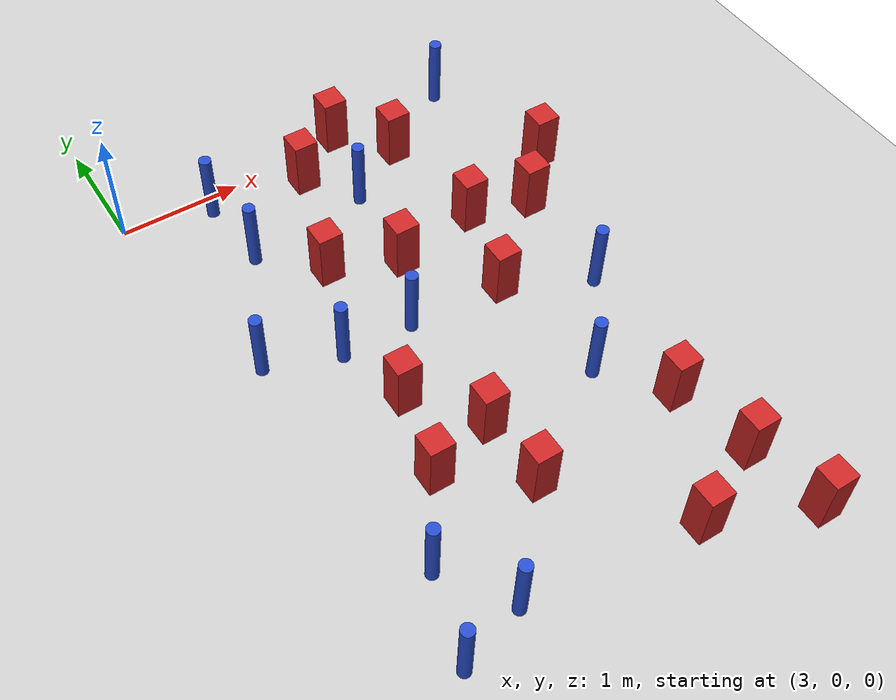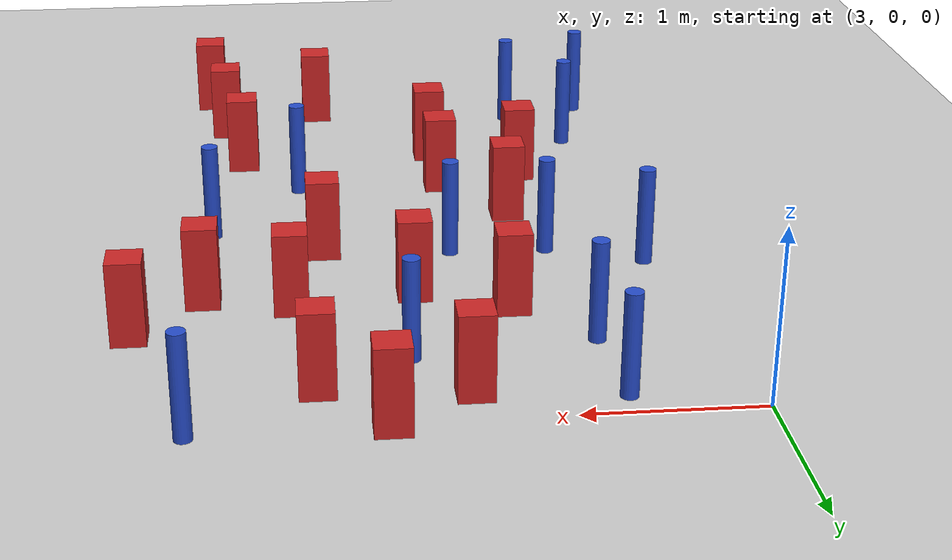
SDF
<sdf version="1.6">
 <world name="default">
  <model name="ground_plane">
   <static>1</static>
   <link name="link">
    <collision name="collision">
     <geometry><plane><normal>0 0 1</normal><size>100 100</size></plane></geometry>
     <surface><friction><ode><mu>100</mu><mu2>50</mu2></ode></friction></surface>
    </collision>
    <visual name="visual">
     <cast_shadows>0</cast_shadows>
     <geometry><plane><normal>0 0 1</normal><size>100 100</size></plane></geometry>
     <material>
      <ambient>1.0 1.0 1.0 1.0</ambient>
      <diffuse>0.8 0.8 0.8 1.0</diffuse>
      <specular>0.01 0.01 0.01 1.000000</specular>
     </material>
    </visual>
   </link>
  </model>
  <model name="pole_obstacle2">
   <static>true</static>
   <pose>5.98450393282 0.0520118325981 2.88873142074e-08 -9.90536689361e-09 4.60219949001e-07 -1.20965994955e-07</pose>
   <link name="link">
    <pose>0 0 0.3 0 -0 0</pose>
    <inertial>
     <mass>1</mass>
     <inertia><ixx>0.145833</ixx><ixy>0</ixy><ixz>0</ixz><iyy>0.145833</iyy><iyz>0</iyz><izz>0.125</izz></inertia>
    </inertial>
    <collision name="collision">
     <geometry><cylinder><radius>0.05</radius><length>.6</length></cylinder></geometry>
    </collision>
    <visual name="visual">
     <geometry><cylinder><radius>0.05</radius><length>.6</length></cylinder></geometry>
     <material>
      <script><name>Gazebo/Blue</name><uri>file://media/materials/scripts/gazebo.material</uri></script>
     </material>
    </visual>
   </link>
  </model>
  <model name="square_post_obstacle13">
   <static>true</static>
   <pose>5.93335077788 -1.4574501915 8.22691968438e-08 7.2212513382e-06 -7.54495500217e-07 2.29674213826e-05</pose>
   <link name="link">
    <pose>0 0 0.25 0 -0 0</pose>
    <inertial>
     <mass>100</mass>
     <inertia>
      <ixx>0.166667</ixx>
      <ixy>0</ixy>
      <ixz>0</ixz>
      <iyy>0.166667</iyy>
      <iyz>0</iyz>
      <izz>0.166667</izz>
     </inertia>
    </inertial>
    <collision name="collision"><geometry><box><size>.2 .2 .5</size></box></geometry></collision>
    <visual name="visual">
     <geometry><box><size>.2 .2 .5</size></box></geometry>
     <material>
      <script><name>Gazebo/Red</name><uri>file://media/materials/scripts/gazebo.material</uri></script>
     </material>
    </visual>
   </link>
  </model>
  <model name="square_post_obstacle28">
   <static>true</static>
   <pose>4.45111842854 -3.65477685041 8.22691968438e-08 7.2212513382e-06 -7.54495500217e-07 2.29674213826e-05</pose>
   <link name="link">
    <pose>0 0 0.25 0 -0 0</pose>
    <inertial>
     <mass>100</mass>
     <inertia>
      <ixx>0.166667</ixx>
      <ixy>0</ixy>
      <ixz>0</ixz>
      <iyy>0.166667</iyy>
      <iyz>0</iyz>
      <izz>0.166667</izz>
     </inertia>
    </inertial>
    <collision name="collision"><geometry><box><size>.2 .2 .5</size></box></geometry></collision>
    <visual name="visual">
     <geometry><box><size>.2 .2 .5</size></box></geometry>
     <material>
      <script><name>Gazebo/Red</name><uri>file://media/materials/scripts/gazebo.material</uri></script>
     </material>
    </visual>
   </link>
  </model>
  <model name="square_post_obstacle36">
   <static>true</static>
   <pose>6.32272839753 -1.04574170397 8.22691968438e-08 7.2212513382e-06 -7.54495500217e-07 2.29674213826e-05</pose>
   <link name="link">
    <pose>0 0 0.25 0 -0 0</pose>
    <inertial>
     <mass>100</mass>
     <inertia>
      <ixx>0.166667</ixx>
      <ixy>0</ixy>
      <ixz>0</ixz>
      <iyy>0.166667</iyy>
      <iyz>0</iyz>
      <izz>0.166667</izz>
     </inertia>
    </inertial>
    <collision name="collision"><geometry><box><size>.2 .2 .5</size></box></geometry></collision>
    <visual name="visual">
     <geometry><box><size>.2 .2 .5</size></box></geometry>
     <material>
      <script><name>Gazebo/Red</name><uri>file://media/materials/scripts/gazebo.material</uri></script>
     </material>
    </visual>
   </link>
  </model>
  <model name="square_post_obstacle39">
   <static>true</static>
   <pose>5.97103102984 -4.82717464047 8.22691968438e-08 7.2212513382e-06 -7.54495500217e-07 2.29674213826e-05</pose>
   <link name="link">
    <pose>0 0 0.25 0 -0 0</pose>
    <inertial>
     <mass>100</mass>
     <inertia>
      <ixx>0.166667</ixx>
      <ixy>0</ixy>
      <ixz>0</ixz>
      <iyy>0.166667</iyy>
      <iyz>0</iyz>
      <izz>0.166667</izz>
     </inertia>
    </inertial>
    <collision name="collision"><geometry><box><size>.2 .2 .5</size></box></geometry></collision>
    <visual name="visual">
     <geometry><box><size>.2 .2 .5</size></box></geometry>
     <material>
      <script><name>Gazebo/Red</name><uri>file://media/materials/scripts/gazebo.material</uri></script>
     </material>
    </visual>
   </link>
  </model>
  <model name="pole_obstacle40">
   <static>true</static>
   <pose>3.48325071317 -3.83719555278 2.88873142074e-08 -9.90536690232e-09 4.6021994898e-07 -1.20965994968e-07</pose>
   <link name="link">
    <pose>0 0 0.3 0 -0 0</pose>
    <inertial>
     <mass>1</mass>
     <inertia><ixx>0.145833</ixx><ixy>0</ixy><ixz>0</ixz><iyy>0.145833</iyy><iyz>0</iyz><izz>0.125</izz></inertia>
    </inertial>
    <collision name="collision">
     <geometry><cylinder><radius>0.05</radius><length>.6</length></cylinder></geometry>
    </collision>
    <visual name="visual">
     <geometry><cylinder><radius>0.05</radius><length>.6</length></cylinder></geometry>
     <material>
      <script><name>Gazebo/Blue</name><uri>file://media/materials/scripts/gazebo.material</uri></script>
     </material>
    </visual>
   </link>
  </model>
  <model name="pole_obstacle53">
   <static>true</static>
   <pose>3.29543677055 -4.50667835025 2.88873142074e-08 -9.90536689859e-09 4.60219948989e-07 -1.20965994961e-07</pose>
   <link name="link">
    <pose>0 0 0.3 0 -0 0</pose>
    <inertial>
     <mass>1</mass>
     <inertia><ixx>0.145833</ixx><ixy>0</ixy><ixz>0</ixz><iyy>0.145833</iyy><iyz>0</iyz><izz>0.125</izz></inertia>
    </inertial>
    <collision name="collision">
     <geometry><cylinder><radius>0.05</radius><length>.6</length></cylinder></geometry>
    </collision>
    <visual name="visual">
     <geometry><cylinder><radius>0.05</radius><length>.6</length></cylinder></geometry>
     <material>
      <script><name>Gazebo/Blue</name><uri>file://media/materials/scripts/gazebo.material</uri></script>
     </material>
    </visual>
   </link>
  </model>
  <model name="square_post_obstacle70">
   <static>true</static>
   <pose>4.42544886467 -3.08571415982 8.22691968438e-08 7.2212513382e-06 -7.54495500217e-07 2.29674213826e-05</pose>
   <link name="link">
    <pose>0 0 0.25 0 -0 0</pose>
    <inertial>
     <mass>100</mass>
     <inertia>
      <ixx>0.166667</ixx>
      <ixy>0</ixy>
      <ixz>0</ixz>
      <iyy>0.166667</iyy>
      <iyz>0</iyz>
      <izz>0.166667</izz>
     </inertia>
    </inertial>
    <collision name="collision"><geometry><box><size>.2 .2 .5</size></box></geometry></collision>
    <visual name="visual">
     <geometry><box><size>.2 .2 .5</size></box></geometry>
     <material>
      <script><name>Gazebo/Red</name><uri>file://media/materials/scripts/gazebo.material</uri></script>
     </material>
    </visual>
   </link>
  </model>
  <model name="square_post_obstacle75">
   <static>true</static>
   <pose>5.20653766354 -4.50158408308 8.22691968438e-08 7.22125133819e-06 -7.54495500217e-07 2.29674213826e-05</pose>
   <link name="link">
    <pose>0 0 0.25 0 -0 0</pose>
    <inertial>
     <mass>100</mass>
     <inertia>
      <ixx>0.166667</ixx>
      <ixy>0</ixy>
      <ixz>0</ixz>
      <iyy>0.166667</iyy>
      <iyz>0</iyz>
      <izz>0.166667</izz>
     </inertia>
    </inertial>
    <collision name="collision"><geometry><box><size>.2 .2 .5</size></box></geometry></collision>
    <visual name="visual">
     <geometry><box><size>.2 .2 .5</size></box></geometry>
     <material>
      <script><name>Gazebo/Red</name><uri>file://media/materials/scripts/gazebo.material</uri></script>
     </material>
    </visual>
   </link>
  </model>
  <model name="pole_obstacle81">
   <static>true</static>
   <pose>3.87712751434 -2.00368837345 2.88873142074e-08 -9.9053668955e-09 4.60219948996e-07 -1.20965994957e-07</pose>
   <link name="link">
    <pose>0 0 0.3 0 -0 0</pose>
    <inertial>
     <mass>1</mass>
     <inertia><ixx>0.145833</ixx><ixy>0</ixy><ixz>0</ixz><iyy>0.145833</iyy><iyz>0</iyz><izz>0.125</izz></inertia>
    </inertial>
    <collision name="collision">
     <geometry><cylinder><radius>0.05</radius><length>.6</length></cylinder></geometry>
    </collision>
    <visual name="visual">
     <geometry><cylinder><radius>0.05</radius><length>.6</length></cylinder></geometry>
     <material>
      <script><name>Gazebo/Blue</name><uri>file://media/materials/scripts/gazebo.material</uri></script>
     </material>
    </visual>
   </link>
  </model>
  <model name="pole_obstacle84">
   <static>true</static>
   <pose>3.7648357998 -0.805726937626 2.88873142074e-08 -9.90536689285e-09 4.60219949002e-07 -1.20965994953e-07</pose>
   <link name="link">
    <pose>0 0 0.3 0 -0 0</pose>
    <inertial>
     <mass>1</mass>
     <inertia><ixx>0.145833</ixx><ixy>0</ixy><ixz>0</ixz><iyy>0.145833</iyy><iyz>0</iyz><izz>0.125</izz></inertia>
    </inertial>
    <collision name="collision">
     <geometry><cylinder><radius>0.05</radius><length>.6</length></cylinder></geometry>
    </collision>
    <visual name="visual">
     <geometry><cylinder><radius>0.05</radius><length>.6</length></cylinder></geometry>
     <material>
      <script><name>Gazebo/Blue</name><uri>file://media/materials/scripts/gazebo.material</uri></script>
     </material>
    </visual>
   </link>
  </model>
  <model name="pole_obstacle87">
   <static>true</static>
   <pose>3.30753627075 -1.78974262358 2.88873142074e-08 -9.90536689395e-09 4.60219949e-07 -1.20965994953e-07</pose>
   <link name="link">
    <pose>0 0 0.3 0 -0 0</pose>
    <inertial>
     <mass>1</mass>
     <inertia><ixx>0.145833</ixx><ixy>0</ixy><ixz>0</ixz><iyy>0.145833</iyy><iyz>0</iyz><izz>0.125</izz></inertia>
    </inertial>
    <collision name="collision">
     <geometry><cylinder><radius>0.05</radius><length>.6</length></cylinder></geometry>
    </collision>
    <visual name="visual">
     <geometry><cylinder><radius>0.05</radius><length>.6</length></cylinder></geometry>
     <material>
      <script><name>Gazebo/Blue</name><uri>file://media/materials/scripts/gazebo.material</uri></script>
     </material>
    </visual>
   </link>
  </model>
  <model name="square_post_obstacle81">
   <static>true</static>
   <pose>5.84723898401 -4.21907924971 8.22691968438e-08 7.2212513382e-06 -7.54495500217e-07 2.29674213826e-05</pose>
   <link name="link">
    <pose>0 0 0.25 0 -0 0</pose>
    <inertial>
     <mass>100</mass>
     <inertia>
      <ixx>0.166667</ixx>
      <ixy>0</ixy>
      <ixz>0</ixz>
      <iyy>0.166667</iyy>
      <iyz>0</iyz>
      <izz>0.166667</izz>
     </inertia>
    </inertial>
    <collision name="collision"><geometry><box><size>.2 .2 .5</size></box></geometry></collision>
    <visual name="visual">
     <geometry><box><size>.2 .2 .5</size></box></geometry>
     <material>
      <script><name>Gazebo/Red</name><uri>file://media/materials/scripts/gazebo.material</uri></script>
     </material>
    </visual>
   </link>
  </model>
  <model name="square_post_obstacle93">
   <static>true</static>
   <pose>5.22646437338 -2.0768197818 8.22691968438e-08 7.2212513382e-06 -7.54495500217e-07 2.29674213826e-05</pose>
   <link name="link">
    <pose>0 0 0.25 0 -0 0</pose>
    <inertial>
     <mass>100</mass>
     <inertia>
      <ixx>0.166667</ixx>
      <ixy>0</ixy>
      <ixz>0</ixz>
      <iyy>0.166667</iyy>
      <iyz>0</iyz>
      <izz>0.166667</izz>
     </inertia>
    </inertial>
    <collision name="collision"><geometry><box><size>.2 .2 .5</size></box></geometry></collision>
    <visual name="visual">
     <geometry><box><size>.2 .2 .5</size></box></geometry>
     <material>
      <script><name>Gazebo/Red</name><uri>file://media/materials/scripts/gazebo.material</uri></script>
     </material>
    </visual>
   </link>
  </model>
  <model name="pole_obstacle136">
   <static>true</static>
   <pose>4.45875215781 -2.02023950317 2.88873142074e-08 -9.90536689749e-09 4.60219948991e-07 -1.20965994959e-07</pose>
   <link name="link">
    <pose>0 0 0.3 0 -0 0</pose>
    <inertial>
     <mass>1</mass>
     <inertia><ixx>0.145833</ixx><ixy>0</ixy><ixz>0</ixz><iyy>0.145833</iyy><iyz>0</iyz><izz>0.125</izz></inertia>
    </inertial>
    <collision name="collision">
     <geometry><cylinder><radius>0.05</radius><length>.6</length></cylinder></geometry>
    </collision>
    <visual name="visual">
     <geometry><cylinder><radius>0.05</radius><length>.6</length></cylinder></geometry>
     <material>
      <script><name>Gazebo/Blue</name><uri>file://media/materials/scripts/gazebo.material</uri></script>
     </material>
    </visual>
   </link>
  </model>
  <model name="square_post_obstacle118">
   <static>true</static>
   <pose>4.72104698933 -1.45118410334 8.22691968438e-08 7.2212513382e-06 -7.54495500217e-07 2.29674213826e-05</pose>
   <link name="link">
    <pose>0 0 0.25 0 -0 0</pose>
    <inertial>
     <mass>100</mass>
     <inertia>
      <ixx>0.166667</ixx>
      <ixy>0</ixy>
      <ixz>0</ixz>
      <iyy>0.166667</iyy>
      <iyz>0</iyz>
      <izz>0.166667</izz>
     </inertia>
    </inertial>
    <collision name="collision"><geometry><box><size>.2 .2 .5</size></box></geometry></collision>
    <visual name="visual">
     <geometry><box><size>.2 .2 .5</size></box></geometry>
     <material>
      <script><name>Gazebo/Red</name><uri>file://media/materials/scripts/gazebo.material</uri></script>
     </material>
    </visual>
   </link>
  </model>
  <model name="square_post_obstacle121">
   <static>true</static>
   <pose>5.30965069357 -0.360755727647 8.22691968438e-08 7.2212513382e-06 -7.54495500217e-07 2.29674213826e-05</pose>
   <link name="link">
    <pose>0 0 0.25 0 -0 0</pose>
    <inertial>
     <mass>100</mass>
     <inertia>
      <ixx>0.166667</ixx>
      <ixy>0</ixy>
      <ixz>0</ixz>
      <iyy>0.166667</iyy>
      <iyz>0</iyz>
      <izz>0.166667</izz>
     </inertia>
    </inertial>
    <collision name="collision"><geometry><box><size>.2 .2 .5</size></box></geometry></collision>
    <visual name="visual">
     <geometry><box><size>.2 .2 .5</size></box></geometry>
     <material>
      <script><name>Gazebo/Red</name><uri>file://media/materials/scripts/gazebo.material</uri></script>
     </material>
    </visual>
   </link>
  </model>
  <model name="square_post_obstacle151">
   <static>true</static>
   <pose>5.72315373338 -3.56571907378 8.22691968438e-08 7.2212513382e-06 -7.54495500217e-07 2.29674213826e-05</pose>
   <link name="link">
    <pose>0 0 0.25 0 -0 0</pose>
    <inertial>
     <mass>100</mass>
     <inertia>
      <ixx>0.166667</ixx>
      <ixy>0</ixy>
      <ixz>0</ixz>
      <iyy>0.166667</iyy>
      <iyz>0</iyz>
      <izz>0.166667</izz>
     </inertia>
    </inertial>
    <collision name="collision"><geometry><box><size>.2 .2 .5</size></box></geometry></collision>
    <visual name="visual">
     <geometry><box><size>.2 .2 .5</size></box></geometry>
     <material>
      <script><name>Gazebo/Red</name><uri>file://media/materials/scripts/gazebo.material</uri></script>
     </material>
    </visual>
   </link>
  </model>
  <model name="pole_obstacle158">
   <static>true</static>
   <pose>5.35896014841 -3.08734214758 2.88873142074e-08 -9.90536690245e-09 4.6021994898e-07 -1.20965994966e-07</pose>
   <link name="link">
    <pose>0 0 0.3 0 -0 0</pose>
    <inertial>
     <mass>1</mass>
     <inertia><ixx>0.145833</ixx><ixy>0</ixy><ixz>0</ixz><iyy>0.145833</iyy><iyz>0</iyz><izz>0.125</izz></inertia>
    </inertial>
    <collision name="collision">
     <geometry><cylinder><radius>0.05</radius><length>.6</length></cylinder></geometry>
    </collision>
    <visual name="visual">
     <geometry><cylinder><radius>0.05</radius><length>.6</length></cylinder></geometry>
     <material>
      <script><name>Gazebo/Blue</name><uri>file://media/materials/scripts/gazebo.material</uri></script>
     </material>
    </visual>
   </link>
  </model>
  <model name="pole_obstacle160">
   <static>true</static>
   <pose>4.79660543313 -0.674754007259 2.88873142074e-08 -9.90536689837e-09 4.60219948989e-07 -1.2096599496e-07</pose>
   <link name="link">
    <pose>0 0 0.3 0 -0 0</pose>
    <inertial>
     <mass>1</mass>
     <inertia><ixx>0.145833</ixx><ixy>0</ixy><ixz>0</ixz><iyy>0.145833</iyy><iyz>0</iyz><izz>0.125</izz></inertia>
    </inertial>
    <collision name="collision">
     <geometry><cylinder><radius>0.05</radius><length>.6</length></cylinder></geometry>
    </collision>
    <visual name="visual">
     <geometry><cylinder><radius>0.05</radius><length>.6</length></cylinder></geometry>
     <material>
      <script><name>Gazebo/Blue</name><uri>file://media/materials/scripts/gazebo.material</uri></script>
     </material>
    </visual>
   </link>
  </model>
  <model name="pole_obstacle161">
   <static>true</static>
   <pose>3.82667661937 -4.34544838673 2.88873142074e-08 -9.90536689859e-09 4.60219948989e-07 -1.20965994961e-07</pose>
   <link name="link">
    <pose>0 0 0.3 0 -0 0</pose>
    <inertial>
     <mass>1</mass>
     <inertia><ixx>0.145833</ixx><ixy>0</ixy><ixz>0</ixz><iyy>0.145833</iyy><iyz>0</iyz><izz>0.125</izz></inertia>
    </inertial>
    <collision name="collision">
     <geometry><cylinder><radius>0.05</radius><length>.6</length></cylinder></geometry>
    </collision>
    <visual name="visual">
     <geometry><cylinder><radius>0.05</radius><length>.6</length></cylinder></geometry>
     <material>
      <script><name>Gazebo/Blue</name><uri>file://media/materials/scripts/gazebo.material</uri></script>
     </material>
    </visual>
   </link>
  </model>
  <model name="square_post_obstacle157">
   <static>true</static>
   <pose>4.180378951 -1.22726663137 8.22691968438e-08 7.2212513382e-06 -7.54495500217e-07 2.29674213826e-05</pose>
   <link name="link">
    <pose>0 0 0.25 0 -0 0</pose>
    <inertial>
     <mass>100</mass>
     <inertia>
      <ixx>0.166667</ixx>
      <ixy>0</ixy>
      <ixz>0</ixz>
      <iyy>0.166667</iyy>
      <iyz>0</iyz>
      <izz>0.166667</izz>
     </inertia>
    </inertial>
    <collision name="collision"><geometry><box><size>.2 .2 .5</size></box></geometry></collision>
    <visual name="visual">
     <geometry><box><size>.2 .2 .5</size></box></geometry>
     <material>
      <script><name>Gazebo/Red</name><uri>file://media/materials/scripts/gazebo.material</uri></script>
     </material>
    </visual>
   </link>
  </model>
  <model name="square_post_obstacle167">
   <static>true</static>
   <pose>4.50058924636 -0.265029514578 8.22691968438e-08 7.2212513382e-06 -7.54495500217e-07 2.29674213826e-05</pose>
   <link name="link">
    <pose>0 0 0.25 0 -0 0</pose>
    <inertial>
     <mass>100</mass>
     <inertia>
      <ixx>0.166667</ixx>
      <ixy>0</ixy>
      <ixz>0</ixz>
      <iyy>0.166667</iyy>
      <iyz>0</iyz>
      <izz>0.166667</izz>
     </inertia>
    </inertial>
    <collision name="collision"><geometry><box><size>.2 .2 .5</size></box></geometry></collision>
    <visual name="visual">
     <geometry><box><size>.2 .2 .5</size></box></geometry>
     <material>
      <script><name>Gazebo/Red</name><uri>file://media/materials/scripts/gazebo.material</uri></script>
     </material>
    </visual>
   </link>
  </model>
  <model name="square_post_obstacle169">
   <static>true</static>
   <pose>4.94645089973 0.0442411745819 8.22691968438e-08 7.2212513382e-06 -7.54495500217e-07 2.29674213826e-05</pose>
   <link name="link">
    <pose>0 0 0.25 0 -0 0</pose>
    <inertial>
     <mass>100</mass>
     <inertia>
      <ixx>0.166667</ixx>
      <ixy>0</ixy>
      <ixz>0</ixz>
      <iyy>0.166667</iyy>
      <iyz>0</iyz>
      <izz>0.166667</izz>
     </inertia>
    </inertial>
    <collision name="collision"><geometry><box><size>.2 .2 .5</size></box></geometry></collision>
    <visual name="visual">
     <geometry><box><size>.2 .2 .5</size></box></geometry>
     <material>
      <script><name>Gazebo/Red</name><uri>file://media/materials/scripts/gazebo.material</uri></script>
     </material>
    </visual>
   </link>
  </model>
  <model name="pole_obstacle184">
   <static>true</static>
   <pose>5.89891716558 -2.39326765611 2.88873142074e-08 -9.90536690245e-09 4.6021994898e-07 -1.20965994966e-07</pose>
   <link name="link">
    <pose>0 0 0.3 0 -0 0</pose>
    <inertial>
     <mass>1</mass>
     <inertia><ixx>0.145833</ixx><ixy>0</ixy><ixz>0</ixz><iyy>0.145833</iyy><iyz>0</iyz><izz>0.125</izz></inertia>
    </inertial>
    <collision name="collision">
     <geometry><cylinder><radius>0.05</radius><length>.6</length></cylinder></geometry>
    </collision>
    <visual name="visual">
     <geometry><cylinder><radius>0.05</radius><length>.6</length></cylinder></geometry>
     <material>
      <script><name>Gazebo/Blue</name><uri>file://media/materials/scripts/gazebo.material</uri></script>
     </material>
    </visual>
   </link>
  </model>
  <model name="square_post_obstacle191">
   <static>true</static>
   <pose>4.04376388383 -2.56874577481 8.22691968438e-08 7.2212513382e-06 -7.54495500217e-07 2.29674213826e-05</pose>
   <link name="link">
    <pose>0 0 0.25 0 -0 0</pose>
    <inertial>
     <mass>100</mass>
     <inertia>
      <ixx>0.166667</ixx>
      <ixy>0</ixy>
      <ixz>0</ixz>
      <iyy>0.166667</iyy>
      <iyz>0</iyz>
      <izz>0.166667</izz>
     </inertia>
    </inertial>
    <collision name="collision"><geometry><box><size>.2 .2 .5</size></box></geometry></collision>
    <visual name="visual">
     <geometry><box><size>.2 .2 .5</size></box></geometry>
     <material>
      <script><name>Gazebo/Red</name><uri>file://media/materials/scripts/gazebo.material</uri></script>
     </material>
    </visual>
   </link>
  </model>
  <model name="square_post_obstacle213">
   <static>true</static>
   <pose>5.43054541015 -1.33032287641 8.22691968438e-08 7.2212513382e-06 -7.54495500217e-07 2.29674213826e-05</pose>
   <link name="link">
    <pose>0 0 0.25 0 -0 0</pose>
    <inertial>
     <mass>100</mass>
     <inertia>
      <ixx>0.166667</ixx>
      <ixy>0</ixy>
      <ixz>0</ixz>
      <iyy>0.166667</iyy>
      <iyz>0</iyz>
      <izz>0.166667</izz>
     </inertia>
    </inertial>
    <collision name="collision"><geometry><box><size>.2 .2 .5</size></box></geometry></collision>
    <visual name="visual">
     <geometry><box><size>.2 .2 .5</size></box></geometry>
     <material>
      <script><name>Gazebo/Red</name><uri>file://media/materials/scripts/gazebo.material</uri></script>
     </material>
    </visual>
   </link>
  </model>
  <model name="square_post_obstacle216">
   <static>true</static>
   <pose>3.88572624559 -3.23615914567 8.22691968438e-08 7.2212513382e-06 -7.54495500217e-07 2.29674213826e-05</pose>
   <link name="link">
    <pose>0 0 0.25 0 -0 0</pose>
    <inertial>
     <mass>100</mass>
     <inertia>
      <ixx>0.166667</ixx>
      <ixy>0</ixy>
      <ixz>0</ixz>
      <iyy>0.166667</iyy>
      <iyz>0</iyz>
      <izz>0.166667</izz>
     </inertia>
    </inertial>
    <collision name="collision"><geometry><box><size>.2 .2 .5</size></box></geometry></collision>
    <visual name="visual">
     <geometry><box><size>.2 .2 .5</size></box></geometry>
     <material>
      <script><name>Gazebo/Red</name><uri>file://media/materials/scripts/gazebo.material</uri></script>
     </material>
    </visual>
   </link>
  </model>
  <model name="pole_obstacle214">
   <static>true</static>
   <pose>3.70914000913 -0.173272979588 2.88873142074e-08 -9.90536690979e-09 4.60219948962e-07 -1.2096599498e-07</pose>
   <link name="link">
    <pose>0 0 0.3 0 -0 0</pose>
    <inertial>
     <mass>1</mass>
     <inertia><ixx>0.145833</ixx><ixy>0</ixy><ixz>0</ixz><iyy>0.145833</iyy><iyz>0</iyz><izz>0.125</izz></inertia>
    </inertial>
    <collision name="collision">
     <geometry><cylinder><radius>0.05</radius><length>.6</length></cylinder></geometry>
    </collision>
    <visual name="visual">
     <geometry><cylinder><radius>0.05</radius><length>.6</length></cylinder></geometry>
     <material>
      <script><name>Gazebo/Blue</name><uri>file://media/materials/scripts/gazebo.material</uri></script>
     </material>
    </visual>
   </link>
  </model>
 </world>
</sdf>
